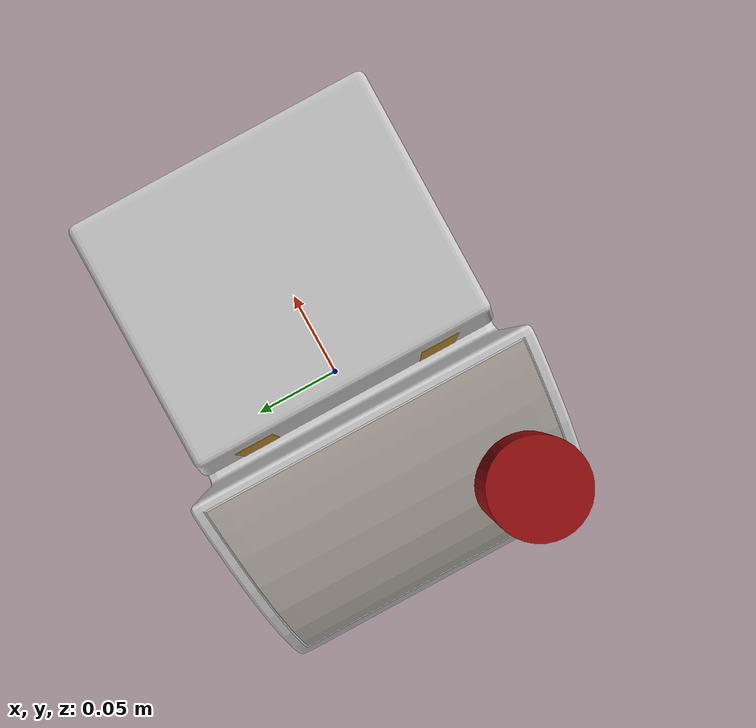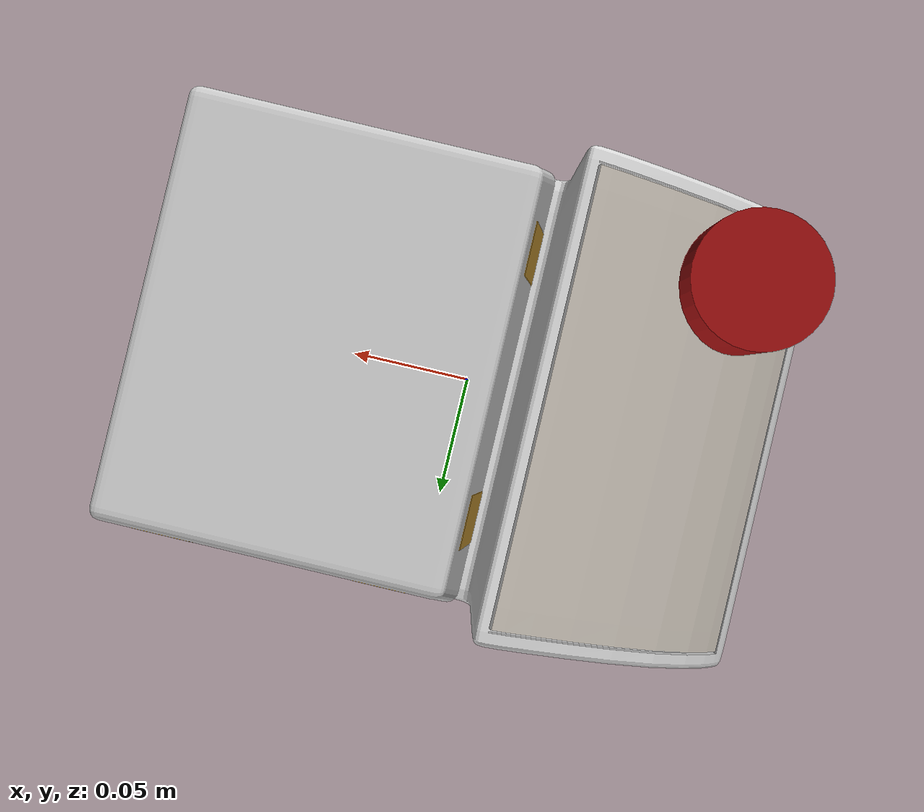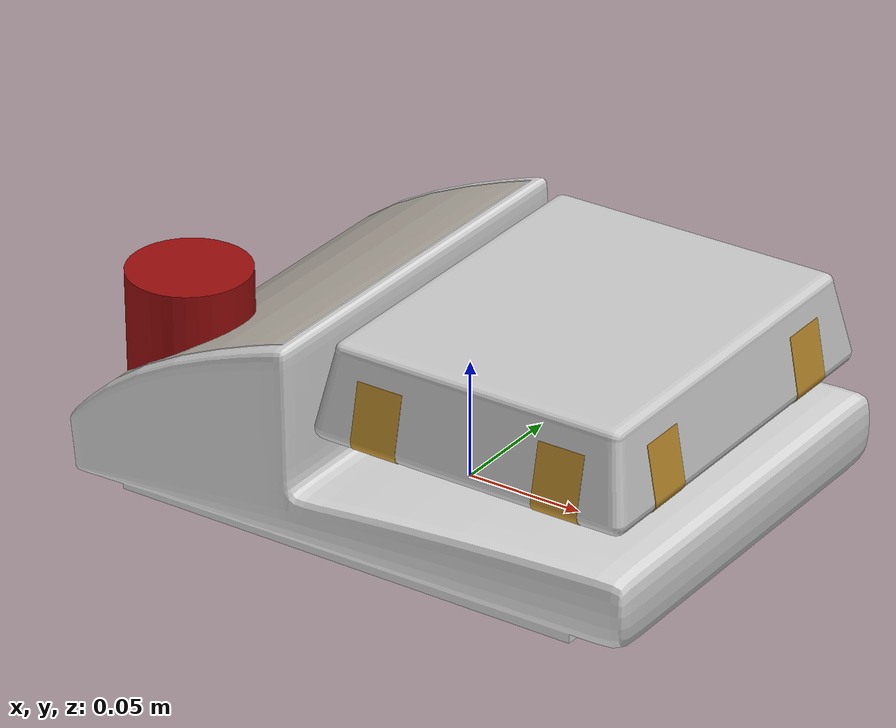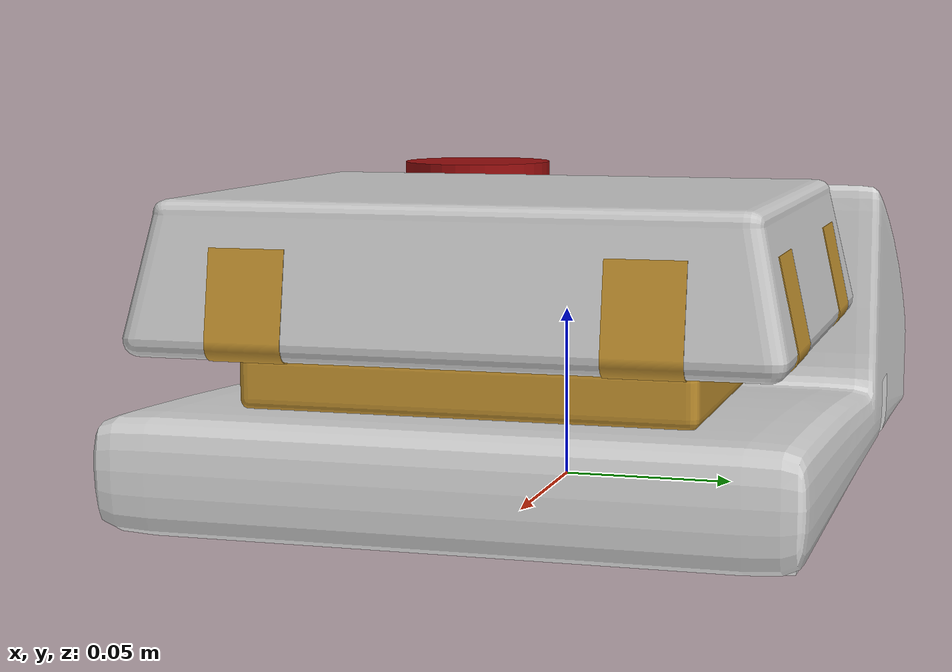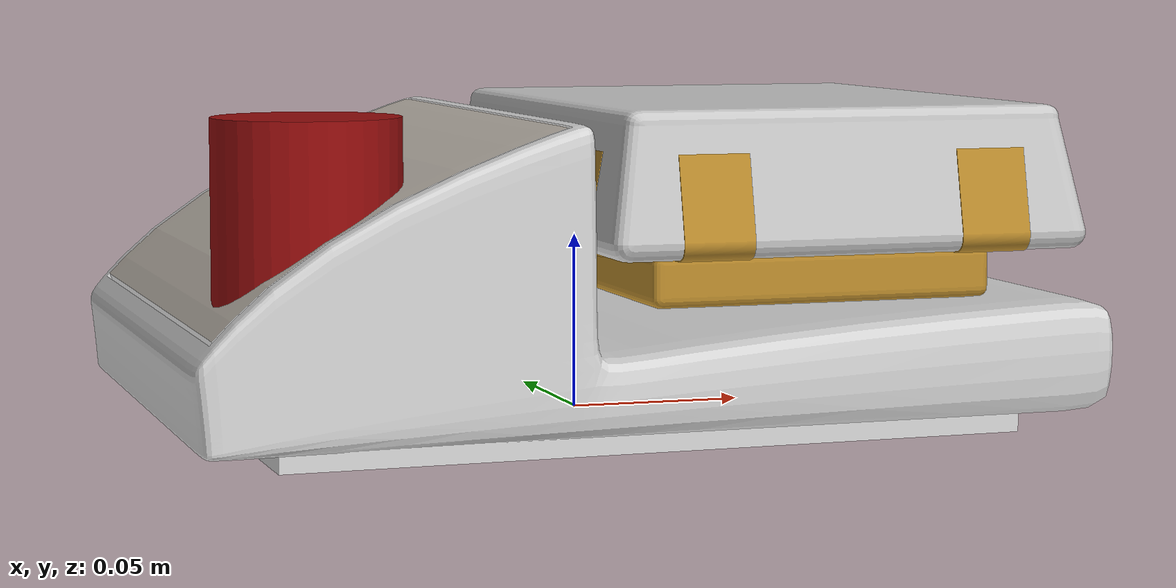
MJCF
<?xml version="1.0" ?>
<mujoco model="heat_device">
  <asset>
    <!-- Textured panel (material_03 from original GLB) -->
    <texture type="2d" name="heat_device_3_tex" file="heat_device_3.png"/>
    <material name="heat_device_3_mat" texture="heat_device_3_tex" specular="0.4" shininess="0.001" rgba="1 1 1 1"/>

    <!-- Solid materials (no texture, baseColor from PBR) -->
    <!-- Material_4_plastic_light_white: baseColor 204/255 = 0.8 -->
    <material name="heat_device_0_mat" specular="0.4" shininess="0.001" rgba="0.8 0.8 0.8 1"/>
    <!-- OmniPBR_Button_DeepGray: dark gray plastic body (lightened) -->
    <material name="heat_device_1_mat" specular="0.4" shininess="0.001" rgba="0.85 0.85 0.85 1"/>
    <!-- OmniPBR_Button_Red: red button -->
    <material name="heat_device_2_mat" specular="0.4" shininess="0.001" rgba="0.6 0.05 0.05 1"/>
    <!-- vertex-colored mesh (mean: brown/orange) -->
    <material name="heat_device_4_mat" specular="0.4" shininess="0.001" rgba="0.756 0.565 0.180 1"/>

    <!-- Visual meshes -->
    <mesh file="heat_device_0.obj"/>
    <mesh file="heat_device_1.obj"/>
    <mesh file="heat_device_2.obj"/>
    <mesh file="heat_device_3.obj"/>
    <mesh file="heat_device_4.obj"/>

    <!-- Collision meshes (VHACD decomposed) -->
    <mesh file="heat_device/heat_device_collision_0.obj"/>
    <mesh file="heat_device/heat_device_collision_1.obj"/>
    <mesh file="heat_device/heat_device_collision_2.obj"/>
    <mesh file="heat_device/heat_device_collision_3.obj"/>
    <mesh file="heat_device/heat_device_collision_4.obj"/>
    <mesh file="heat_device/heat_device_collision_5.obj"/>
    <mesh file="heat_device/heat_device_collision_6.obj"/>
    <mesh file="heat_device/heat_device_collision_7.obj"/>
    <mesh file="heat_device/heat_device_collision_8.obj"/>
    <mesh file="heat_device/heat_device_collision_9.obj"/>
    <mesh file="heat_device/heat_device_collision_10.obj"/>
    <mesh file="heat_device/heat_device_collision_11.obj"/>
    <mesh file="heat_device/heat_device_collision_12.obj"/>
    <mesh file="heat_device/heat_device_collision_13.obj"/>
    <mesh file="heat_device/heat_device_collision_14.obj"/>
    <mesh file="heat_device/heat_device_collision_15.obj"/>
    <mesh file="heat_device/heat_device_collision_16.obj"/>
    <mesh file="heat_device/heat_device_collision_17.obj"/>
    <mesh file="heat_device/heat_device_collision_18.obj"/>
    <mesh file="heat_device/heat_device_collision_19.obj"/>
    <mesh file="heat_device/heat_device_collision_20.obj"/>
    <mesh file="heat_device/heat_device_collision_21.obj"/>
    <mesh file="heat_device/heat_device_collision_22.obj"/>
    <mesh file="heat_device/heat_device_collision_23.obj"/>
    <mesh file="heat_device/heat_device_collision_24.obj"/>
    <mesh file="heat_device/heat_device_collision_25.obj"/>
    <mesh file="heat_device/heat_device_collision_26.obj"/>
    <mesh file="heat_device/heat_device_collision_27.obj"/>
    <mesh file="heat_device/heat_device_collision_28.obj"/>
    <mesh file="heat_device/heat_device_collision_29.obj"/>
    <mesh file="heat_device/heat_device_collision_30.obj"/>
    <mesh file="heat_device/heat_device_collision_31.obj"/>
    <mesh file="heat_device/heat_device_collision_32.obj"/>
    <mesh file="heat_device/heat_device_collision_33.obj"/>
    <mesh file="heat_device/heat_device_collision_34.obj"/>
    <mesh file="heat_device/heat_device_collision_35.obj"/>
    <mesh file="heat_device/heat_device_collision_36.obj"/>
    <mesh file="heat_device/heat_device_collision_37.obj"/>
    <mesh file="heat_device/heat_device_collision_38.obj"/>
    <mesh file="heat_device/heat_device_collision_39.obj"/>
    <mesh file="heat_device/heat_device_collision_40.obj"/>
    <mesh file="heat_device/heat_device_collision_41.obj"/>
    <mesh file="heat_device/heat_device_collision_42.obj"/>
    <mesh file="heat_device/heat_device_collision_43.obj"/>
  </asset>
  <worldbody>
    <body name="heat_device">
      <inertial pos="0 0 0.044717" mass="0.02" diaginertia="0.0008 0.0008 0.0005"/>
      <!-- Visual meshes (one per material group) -->
      <geom mesh="heat_device_0" material="heat_device_0_mat" class="visual"/>
      <geom mesh="heat_device_1" material="heat_device_1_mat" class="visual"/>
      <geom mesh="heat_device_2" material="heat_device_2_mat" class="visual"/>
      <geom mesh="heat_device_3" material="heat_device_3_mat" class="visual"/>
      <geom mesh="heat_device_4" material="heat_device_4_mat" class="visual"/>
      <!-- Start button collision (covers heat_device_2.obj cylinder) -->
      <geom type="cylinder" size="0.025 0.025" pos="-0.0912 -0.0563 0.0634"
            material="heat_device_2_mat" name="start_button" class="collision"/>
      <!-- Collision meshes -->
      <geom mesh="heat_device_collision_0" class="collision"/>
      <geom mesh="heat_device_collision_1" class="collision"/>
      <geom mesh="heat_device_collision_2" class="collision"/>
      <geom mesh="heat_device_collision_3" class="collision"/>
      <geom mesh="heat_device_collision_4" class="collision"/>
      <geom mesh="heat_device_collision_5" class="collision"/>
      <geom mesh="heat_device_collision_6" class="collision"/>
      <geom mesh="heat_device_collision_7" class="collision"/>
      <geom mesh="heat_device_collision_8" class="collision"/>
      <geom mesh="heat_device_collision_9" class="collision"/>
      <geom mesh="heat_device_collision_10" class="collision"/>
      <geom mesh="heat_device_collision_11" class="collision"/>
      <geom mesh="heat_device_collision_12" class="collision"/>
      <geom mesh="heat_device_collision_13" class="collision"/>
      <geom mesh="heat_device_collision_14" class="collision"/>
      <geom mesh="heat_device_collision_15" class="collision"/>
      <geom mesh="heat_device_collision_16" class="collision"/>
      <geom mesh="heat_device_collision_17" class="collision"/>
      <geom mesh="heat_device_collision_18" class="collision"/>
      <geom mesh="heat_device_collision_19" class="collision"/>
      <geom mesh="heat_device_collision_20" class="collision"/>
      <geom mesh="heat_device_collision_21" class="collision"/>
      <geom mesh="heat_device_collision_22" class="collision"/>
      <geom mesh="heat_device_collision_23" class="collision"/>
      <geom mesh="heat_device_collision_24" class="collision"/>
      <geom mesh="heat_device_collision_25" class="collision"/>
      <geom mesh="heat_device_collision_26" class="collision"/>
      <geom mesh="heat_device_collision_27" class="collision"/>
      <geom mesh="heat_device_collision_28" class="collision"/>
      <geom mesh="heat_device_collision_29" class="collision"/>
      <geom mesh="heat_device_collision_30" class="collision"/>
      <geom mesh="heat_device_collision_31" class="collision"/>
      <geom mesh="heat_device_collision_32" class="collision"/>
      <geom mesh="heat_device_collision_33" class="collision"/>
      <geom mesh="heat_device_collision_34" class="collision"/>
      <geom mesh="heat_device_collision_35" class="collision"/>
      <geom mesh="heat_device_collision_36" class="collision"/>
      <geom mesh="heat_device_collision_37" class="collision"/>
      <geom mesh="heat_device_collision_38" class="collision"/>
      <geom mesh="heat_device_collision_39" class="collision"/>
      <geom mesh="heat_device_collision_40" class="collision"/>
      <geom mesh="heat_device_collision_41" class="collision"/>
      <geom mesh="heat_device_collision_42" class="collision"/>
      <geom mesh="heat_device_collision_43" class="collision"/>
      <site class="grasppoint" pos="0.0000 0.0000 0.0537"/>
      <site class="grasppoint" pos="0.0000 0.0000 0.0715"/>
      <site class="grasppoint" pos="0.0000 0.0000 0.0850"/>
      <site class="keypoint" pos="-0.1272 -0.0900 0.0000"/>
      <site class="keypoint" pos="0.1272 0.0900 0.0894"/>
      <site class="placepoint" pos="0.0500 0.0000 0.154"/>
    </body>
  </worldbody>
  <compiler boundmass="0.015" boundinertia="1e-05" angle="radian"/>
  <default>
    <default class="visual">
      <geom group="2" type="mesh" contype="0" conaffinity="0" density="50"/>
    </default>
    <default class="collision">
      <geom group="3" type="mesh" density="50" friction="1.5 0.1 0.1" solimp="0.9 0.95 0.001" solref="0.02 1"/>
    </default>
    <default class="keypoint">
      <site type="sphere" size="0.01" group="3" rgba="1 0 0 1"/>
    </default>
    <default class="placepoint">
      <site type="sphere" size="0.01" group="2" rgba="0 0 1 0"/>
    </default>
    <default class="grasppoint">
      <site type="sphere" size="0.005" group="4" rgba="0 0 1 1"/>
    </default>
  </default>
</mujoco>
